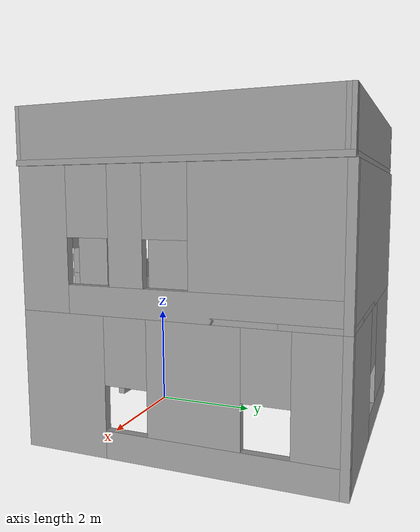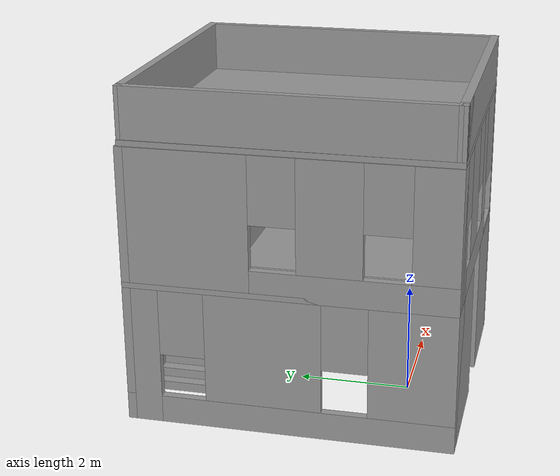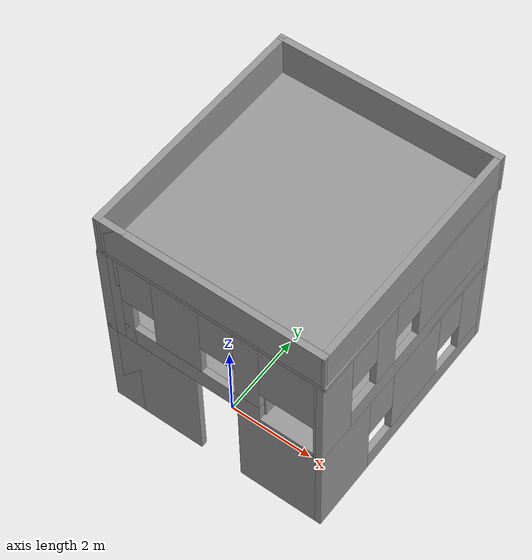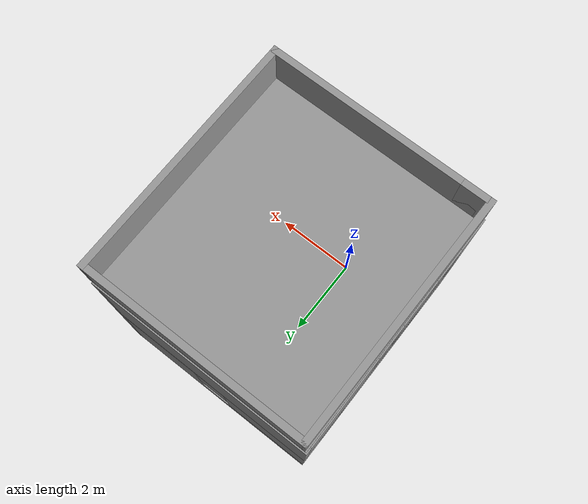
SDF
<?xml version='1.0'?>
<sdf version='1.7'>
  <model name='nisha_house'>
    <pose>0.490201 1.7498 0 0 -0 0</pose>
    <link name='Floor_1'>
      <pose>-0.030201 0.000202 2.5 0 -0 0</pose>
      <visual name='Floor_1_Visual_0'>
        <pose>-2.0574 0 0.05 0 -0 0</pose>
        <geometry>
          <box>
            <size>1.1352 5.75 0.1</size>
          </box>
        </geometry>
        <material>
          <script>
            <uri>file://media/materials/scripts/gazebo.material</uri>
            <name>Gazebo/Grey</name>
          </script>
          <ambient>1 1 1 1</ambient>
        </material>
        <meta>
          <layer>1</layer>
        </meta>
      </visual>
      <collision name='Floor_1_Collision_0'>
        <geometry>
          <box>
            <size>1.1352 5.75 0.1</size>
          </box>
        </geometry>
        <pose>-2.0574 0 0.05 0 -0 0</pose>
      </collision>
      <visual name='Floor_1_Visual_1'>
        <pose>0.567598 -0.560448 0.05 0 -0 0</pose>
        <geometry>
          <box>
            <size>4.1148 4.6291 0.1</size>
          </box>
        </geometry>
        <material>
          <script>
            <uri>file://media/materials/scripts/gazebo.material</uri>
            <name>Gazebo/Grey</name>
          </script>
          <ambient>1 1 1 1</ambient>
        </material>
        <meta>
          <layer>1</layer>
        </meta>
      </visual>
      <collision name='Floor_1_Collision_1'>
        <geometry>
          <box>
            <size>4.1148 4.6291 0.1</size>
          </box>
        </geometry>
        <pose>0.567598 -0.560448 0.05 0 -0 0</pose>
      </collision>
      <visual name='Floor_1_Visual_2'>
        <pose>2.11988 2.31455 0.05 0 -0 0</pose>
        <geometry>
          <box>
            <size>1.01023 1.1209 0.1</size>
          </box>
        </geometry>
        <material>
          <script>
            <uri>file://media/materials/scripts/gazebo.material</uri>
            <name>Gazebo/Grey</name>
          </script>
          <ambient>1 1 1 1</ambient>
        </material>
        <meta>
          <layer>1</layer>
        </meta>
      </visual>
      <collision name='Floor_1_Collision_2'>
        <geometry>
          <box>
            <size>1.01023 1.1209 0.1</size>
          </box>
        </geometry>
        <pose>2.11988 2.31455 0.05 0 -0 0</pose>
      </collision>
      <visual name='Floor_1_Visual_3'>
        <pose>0.062483 2.81455 0.05 0 -0 0</pose>
        <geometry>
          <box>
            <size>3.10457 0.120896 0.1</size>
          </box>
        </geometry>
        <material>
          <script>
            <uri>file://media/materials/scripts/gazebo.material</uri>
            <name>Gazebo/Grey</name>
          </script>
          <ambient>1 1 1 1</ambient>
        </material>
        <meta>
          <layer>1</layer>
        </meta>
      </visual>
      <collision name='Floor_1_Collision_3'>
        <geometry>
          <box>
            <size>3.10457 0.120896 0.1</size>
          </box>
        </geometry>
        <pose>0.062483 2.81455 0.05 0 -0 0</pose>
      </collision>
    </link>
    <link name='Floor_2'>
      <collision name='Floor_2_Collision'>
        <geometry>
          <box>
            <size>5.28081 5.7204 0.1</size>
          </box>
        </geometry>
        <pose>0 0 0.05 0 -0 0</pose>
      </collision>
      <visual name='Floor_2_Visual'>
        <pose>0 0 0.05 0 -0 0</pose>
        <geometry>
          <box>
            <size>5.28081 5.7204 0.1</size>
          </box>
        </geometry>
        <material>
          <script>
            <uri>file://media/materials/scripts/gazebo.material</uri>
            <name>Gazebo/Grey</name>
          </script>
          <ambient>1 1 1 1</ambient>
        </material>
        <meta>
          <layer>2</layer>
        </meta>
      </visual>
      <pose>0.014799 -0.014798 5 0 -0 0</pose>
    </link>
    <link name='Stairs_0'>
      <visual name='Stairs_0_Visual_0'>
        <pose>-1.41652 2.25431 0.083333 0 -0 1.5708</pose>
        <geometry>
          <box>
            <size>1 0.206971 0.166667</size>
          </box>
        </geometry>
        <material>
          <script>
            <uri>file://media/materials/scripts/gazebo.material</uri>
            <name>Gazebo/Grey</name>
          </script>
          <ambient>1 1 1 1</ambient>
        </material>
        <meta>
          <layer>0</layer>
        </meta>
      </visual>
      <collision name='Stairs_0_Collision_0'>
        <geometry>
          <box>
            <size>1 0.206971 0.166667</size>
          </box>
        </geometry>
        <pose>-1.41652 2.25431 0.083333 0 -0 1.5708</pose>
      </collision>
      <visual name='Stairs_0_Visual_1'>
        <pose>-1.20955 2.25431 0.25 0 -0 1.5708</pose>
        <geometry>
          <box>
            <size>1 0.206971 0.166667</size>
          </box>
        </geometry>
        <material>
          <script>
            <uri>file://media/materials/scripts/gazebo.material</uri>
            <name>Gazebo/Grey</name>
          </script>
          <ambient>1 1 1 1</ambient>
        </material>
        <meta>
          <layer>0</layer>
        </meta>
      </visual>
      <collision name='Stairs_0_Collision_1'>
        <geometry>
          <box>
            <size>1 0.206971 0.166667</size>
          </box>
        </geometry>
        <pose>-1.20955 2.25431 0.25 0 -0 1.5708</pose>
      </collision>
      <visual name='Stairs_0_Visual_2'>
        <pose>-1.00258 2.25431 0.416667 0 -0 1.5708</pose>
        <geometry>
          <box>
            <size>1 0.206971 0.166667</size>
          </box>
        </geometry>
        <material>
          <script>
            <uri>file://media/materials/scripts/gazebo.material</uri>
            <name>Gazebo/Grey</name>
          </script>
          <ambient>1 1 1 1</ambient>
        </material>
        <meta>
          <layer>0</layer>
        </meta>
      </visual>
      <collision name='Stairs_0_Collision_2'>
        <geometry>
          <box>
            <size>1 0.206971 0.166667</size>
          </box>
        </geometry>
        <pose>-1.00258 2.25431 0.416667 0 -0 1.5708</pose>
      </collision>
      <visual name='Stairs_0_Visual_3'>
        <pose>-0.795605 2.25431 0.583333 0 -0 1.5708</pose>
        <geometry>
          <box>
            <size>1 0.206971 0.166667</size>
          </box>
        </geometry>
        <material>
          <script>
            <uri>file://media/materials/scripts/gazebo.material</uri>
            <name>Gazebo/Grey</name>
          </script>
          <ambient>1 1 1 1</ambient>
        </material>
        <meta>
          <layer>0</layer>
        </meta>
      </visual>
      <collision name='Stairs_0_Collision_3'>
        <geometry>
          <box>
            <size>1 0.206971 0.166667</size>
          </box>
        </geometry>
        <pose>-0.795605 2.25431 0.583333 0 -0 1.5708</pose>
      </collision>
      <visual name='Stairs_0_Visual_4'>
        <pose>-0.588633 2.25431 0.75 0 -0 1.5708</pose>
        <geometry>
          <box>
            <size>1 0.206971 0.166667</size>
          </box>
        </geometry>
        <material>
          <script>
            <uri>file://media/materials/scripts/gazebo.material</uri>
            <name>Gazebo/Grey</name>
          </script>
          <ambient>1 1 1 1</ambient>
        </material>
        <meta>
          <layer>0</layer>
        </meta>
      </visual>
      <collision name='Stairs_0_Collision_4'>
        <geometry>
          <box>
            <size>1 0.206971 0.166667</size>
          </box>
        </geometry>
        <pose>-0.588633 2.25431 0.75 0 -0 1.5708</pose>
      </collision>
      <visual name='Stairs_0_Visual_5'>
        <pose>-0.381662 2.25431 0.916667 0 -0 1.5708</pose>
        <geometry>
          <box>
            <size>1 0.206971 0.166667</size>
          </box>
        </geometry>
        <material>
          <script>
            <uri>file://media/materials/scripts/gazebo.material</uri>
            <name>Gazebo/Grey</name>
          </script>
          <ambient>1 1 1 1</ambient>
        </material>
        <meta>
          <layer>0</layer>
        </meta>
      </visual>
      <collision name='Stairs_0_Collision_5'>
        <geometry>
          <box>
            <size>1 0.206971 0.166667</size>
          </box>
        </geometry>
        <pose>-0.381662 2.25431 0.916667 0 -0 1.5708</pose>
      </collision>
      <visual name='Stairs_0_Visual_6'>
        <pose>-0.17469 2.25431 1.08333 0 -0 1.5708</pose>
        <geometry>
          <box>
            <size>1 0.206971 0.166667</size>
          </box>
        </geometry>
        <material>
          <script>
            <uri>file://media/materials/scripts/gazebo.material</uri>
            <name>Gazebo/Grey</name>
          </script>
          <ambient>1 1 1 1</ambient>
        </material>
        <meta>
          <layer>0</layer>
        </meta>
      </visual>
      <collision name='Stairs_0_Collision_6'>
        <geometry>
          <box>
            <size>1 0.206971 0.166667</size>
          </box>
        </geometry>
        <pose>-0.17469 2.25431 1.08333 0 -0 1.5708</pose>
      </collision>
      <visual name='Stairs_0_Visual_7'>
        <pose>0.032281 2.25431 1.25 0 -0 1.5708</pose>
        <geometry>
          <box>
            <size>1 0.206971 0.166667</size>
          </box>
        </geometry>
        <material>
          <script>
            <uri>file://media/materials/scripts/gazebo.material</uri>
            <name>Gazebo/Grey</name>
          </script>
          <ambient>1 1 1 1</ambient>
        </material>
        <meta>
          <layer>0</layer>
        </meta>
      </visual>
      <collision name='Stairs_0_Collision_7'>
        <geometry>
          <box>
            <size>1 0.206971 0.166667</size>
          </box>
        </geometry>
        <pose>0.032281 2.25431 1.25 0 -0 1.5708</pose>
      </collision>
      <visual name='Stairs_0_Visual_8'>
        <pose>0.239253 2.25431 1.41667 0 -0 1.5708</pose>
        <geometry>
          <box>
            <size>1 0.206971 0.166667</size>
          </box>
        </geometry>
        <material>
          <script>
            <uri>file://media/materials/scripts/gazebo.material</uri>
            <name>Gazebo/Grey</name>
          </script>
          <ambient>1 1 1 1</ambient>
        </material>
        <meta>
          <layer>0</layer>
        </meta>
      </visual>
      <collision name='Stairs_0_Collision_8'>
        <geometry>
          <box>
            <size>1 0.206971 0.166667</size>
          </box>
        </geometry>
        <pose>0.239253 2.25431 1.41667 0 -0 1.5708</pose>
      </collision>
      <visual name='Stairs_0_Visual_9'>
        <pose>0.446224 2.25431 1.58333 0 -0 1.5708</pose>
        <geometry>
          <box>
            <size>1 0.206971 0.166667</size>
          </box>
        </geometry>
        <material>
          <script>
            <uri>file://media/materials/scripts/gazebo.material</uri>
            <name>Gazebo/Grey</name>
          </script>
          <ambient>1 1 1 1</ambient>
        </material>
        <meta>
          <layer>0</layer>
        </meta>
      </visual>
      <collision name='Stairs_0_Collision_9'>
        <geometry>
          <box>
            <size>1 0.206971 0.166667</size>
          </box>
        </geometry>
        <pose>0.446224 2.25431 1.58333 0 -0 1.5708</pose>
      </collision>
      <visual name='Stairs_0_Visual_10'>
        <pose>0.653196 2.25431 1.75 0 -0 1.5708</pose>
        <geometry>
          <box>
            <size>1 0.206971 0.166667</size>
          </box>
        </geometry>
        <material>
          <script>
            <uri>file://media/materials/scripts/gazebo.material</uri>
            <name>Gazebo/Grey</name>
          </script>
          <ambient>1 1 1 1</ambient>
        </material>
        <meta>
          <layer>0</layer>
        </meta>
      </visual>
      <collision name='Stairs_0_Collision_10'>
        <geometry>
          <box>
            <size>1 0.206971 0.166667</size>
          </box>
        </geometry>
        <pose>0.653196 2.25431 1.75 0 -0 1.5708</pose>
      </collision>
      <visual name='Stairs_0_Visual_11'>
        <pose>0.860167 2.25431 1.91667 0 -0 1.5708</pose>
        <geometry>
          <box>
            <size>1 0.206971 0.166667</size>
          </box>
        </geometry>
        <material>
          <script>
            <uri>file://media/materials/scripts/gazebo.material</uri>
            <name>Gazebo/Grey</name>
          </script>
          <ambient>1 1 1 1</ambient>
        </material>
        <meta>
          <layer>0</layer>
        </meta>
      </visual>
      <collision name='Stairs_0_Collision_11'>
        <geometry>
          <box>
            <size>1 0.206971 0.166667</size>
          </box>
        </geometry>
        <pose>0.860167 2.25431 1.91667 0 -0 1.5708</pose>
      </collision>
      <visual name='Stairs_0_Visual_12'>
        <pose>1.06714 2.25431 2.08333 0 -0 1.5708</pose>
        <geometry>
          <box>
            <size>1 0.206971 0.166667</size>
          </box>
        </geometry>
        <material>
          <script>
            <uri>file://media/materials/scripts/gazebo.material</uri>
            <name>Gazebo/Grey</name>
          </script>
          <ambient>1 1 1 1</ambient>
        </material>
        <meta>
          <layer>0</layer>
        </meta>
      </visual>
      <collision name='Stairs_0_Collision_12'>
        <geometry>
          <box>
            <size>1 0.206971 0.166667</size>
          </box>
        </geometry>
        <pose>1.06714 2.25431 2.08333 0 -0 1.5708</pose>
      </collision>
      <visual name='Stairs_0_Visual_13'>
        <pose>1.27411 2.25431 2.25 0 -0 1.5708</pose>
        <geometry>
          <box>
            <size>1 0.206971 0.166667</size>
          </box>
        </geometry>
        <material>
          <script>
            <uri>file://media/materials/scripts/gazebo.material</uri>
            <name>Gazebo/Grey</name>
          </script>
          <ambient>1 1 1 1</ambient>
        </material>
        <meta>
          <layer>0</layer>
        </meta>
      </visual>
      <collision name='Stairs_0_Collision_13'>
        <geometry>
          <box>
            <size>1 0.206971 0.166667</size>
          </box>
        </geometry>
        <pose>1.27411 2.25431 2.25 0 -0 1.5708</pose>
      </collision>
      <visual name='Stairs_0_Visual_14'>
        <pose>1.48108 2.25431 2.41667 0 -0 1.5708</pose>
        <geometry>
          <box>
            <size>1 0.206971 0.166667</size>
          </box>
        </geometry>
        <material>
          <script>
            <uri>file://media/materials/scripts/gazebo.material</uri>
            <name>Gazebo/Grey</name>
          </script>
          <ambient>1 1 1 1</ambient>
        </material>
        <meta>
          <layer>0</layer>
        </meta>
      </visual>
      <collision name='Stairs_0_Collision_14'>
        <geometry>
          <box>
            <size>1 0.206971 0.166667</size>
          </box>
        </geometry>
        <pose>1.48108 2.25431 2.41667 0 -0 1.5708</pose>
      </collision>
    </link>
    <link name='Wall_0'>
      <pose>0.094799 -2.7998 0 0 -0 0</pose>
      <visual name='Wall_0_Visual_0'>
        <pose>-1.50084 0 1.25 0 -0 0</pose>
        <geometry>
          <box>
            <size>1.99832 0.15 2.5</size>
          </box>
        </geometry>
        <material>
          <script>
            <uri>file://media/materials/scripts/gazebo.material</uri>
            <name>Gazebo/Grey</name>
          </script>
          <ambient>1 1 1 1</ambient>
        </material>
        <meta>
          <layer>0</layer>
        </meta>
      </visual>
      <collision name='Wall_0_Collision_0'>
        <geometry>
          <box>
            <size>1.99832 0.15 2.5</size>
          </box>
        </geometry>
        <pose>-1.50084 0 1.25 0 -0 0</pose>
      </collision>
      <visual name='Wall_0_Visual_1'>
        <pose>1.49916 0 1.25 0 -0 0</pose>
        <geometry>
          <box>
            <size>2.00168 0.15 2.5</size>
          </box>
        </geometry>
        <material>
          <script>
            <uri>file://media/materials/scripts/gazebo.material</uri>
            <name>Gazebo/Grey</name>
          </script>
          <ambient>1 1 1 1</ambient>
        </material>
        <meta>
          <layer>0</layer>
        </meta>
      </visual>
      <collision name='Wall_0_Collision_1'>
        <geometry>
          <box>
            <size>2.00168 0.15 2.5</size>
          </box>
        </geometry>
        <pose>1.49916 0 1.25 0 -0 0</pose>
      </collision>
    </link>
    <link name='Wall_1'>
      <pose>2.5198 0.000202 0 0 -0 1.5708</pose>
      <visual name='Wall_1_Visual_0'>
        <pose>-2.06935 0 1.25 0 -0 0</pose>
        <geometry>
          <box>
            <size>1.61131 0.15 2.5</size>
          </box>
        </geometry>
        <material>
          <script>
            <uri>file://media/materials/scripts/gazebo.material</uri>
            <name>Gazebo/Grey</name>
          </script>
          <ambient>1 1 1 1</ambient>
        </material>
        <meta>
          <layer>0</layer>
        </meta>
      </visual>
      <collision name='Wall_1_Collision_0'>
        <geometry>
          <box>
            <size>1.61131 0.15 2.5</size>
          </box>
        </geometry>
        <pose>-2.06935 0 1.25 0 -0 0</pose>
      </collision>
      <visual name='Wall_1_Visual_1'>
        <pose>0.805655 0 0.25 0 -0 0</pose>
        <geometry>
          <box>
            <size>4.13869 0.15 0.5</size>
          </box>
        </geometry>
        <material>
          <script>
            <uri>file://media/materials/scripts/gazebo.material</uri>
            <name>Gazebo/Grey</name>
          </script>
          <ambient>1 1 1 1</ambient>
        </material>
        <meta>
          <layer>0</layer>
        </meta>
      </visual>
      <collision name='Wall_1_Collision_1'>
        <geometry>
          <box>
            <size>4.13869 0.15 0.5</size>
          </box>
        </geometry>
        <pose>0.805655 0 0.25 0 -0 0</pose>
      </collision>
      <visual name='Wall_1_Visual_2'>
        <pose>0.35301 0 1.5 0 -0 0</pose>
        <geometry>
          <box>
            <size>1.6334 0.15 2</size>
          </box>
        </geometry>
        <material>
          <script>
            <uri>file://media/materials/scripts/gazebo.material</uri>
            <name>Gazebo/Grey</name>
          </script>
          <ambient>1 1 1 1</ambient>
        </material>
        <meta>
          <layer>0</layer>
        </meta>
      </visual>
      <collision name='Wall_1_Collision_2'>
        <geometry>
          <box>
            <size>1.6334 0.15 2</size>
          </box>
        </geometry>
        <pose>0.35301 0 1.5 0 -0 0</pose>
      </collision>
      <visual name='Wall_1_Visual_3'>
        <pose>2.42236 0 1.5 0 -0 0</pose>
        <geometry>
          <box>
            <size>0.90529 0.15 2</size>
          </box>
        </geometry>
        <material>
          <script>
            <uri>file://media/materials/scripts/gazebo.material</uri>
            <name>Gazebo/Grey</name>
          </script>
          <ambient>1 1 1 1</ambient>
        </material>
        <meta>
          <layer>0</layer>
        </meta>
      </visual>
      <collision name='Wall_1_Collision_3'>
        <geometry>
          <box>
            <size>0.90529 0.15 2</size>
          </box>
        </geometry>
        <pose>2.42236 0 1.5 0 -0 0</pose>
      </collision>
      <visual name='Wall_1_Visual_4'>
        <pose>-0.86369 0 1.9 0 -0 0</pose>
        <geometry>
          <box>
            <size>0.8 0.15 1.2</size>
          </box>
        </geometry>
        <material>
          <script>
            <uri>file://media/materials/scripts/gazebo.material</uri>
            <name>Gazebo/Grey</name>
          </script>
          <ambient>1 1 1 1</ambient>
        </material>
        <meta>
          <layer>0</layer>
        </meta>
      </visual>
      <collision name='Wall_1_Collision_4'>
        <geometry>
          <box>
            <size>0.8 0.15 1.2</size>
          </box>
        </geometry>
        <pose>-0.86369 0 1.9 0 -0 0</pose>
      </collision>
      <visual name='Wall_1_Visual_5'>
        <pose>1.56971 0 1.9 0 -0 0</pose>
        <geometry>
          <box>
            <size>0.8 0.15 1.2</size>
          </box>
        </geometry>
        <material>
          <script>
            <uri>file://media/materials/scripts/gazebo.material</uri>
            <name>Gazebo/Grey</name>
          </script>
          <ambient>1 1 1 1</ambient>
        </material>
        <meta>
          <layer>0</layer>
        </meta>
      </visual>
      <collision name='Wall_1_Collision_5'>
        <geometry>
          <box>
            <size>0.8 0.15 1.2</size>
          </box>
        </geometry>
        <pose>1.56971 0 1.9 0 -0 0</pose>
      </collision>
    </link>
    <link name='Wall_15'>
      <pose>0.094799 -2.7998 2.5 0 -0 0</pose>
      <visual name='Wall_15_Visual_0'>
        <pose>-2.37858 0 1.25 0 -0 0</pose>
        <geometry>
          <box>
            <size>0.24285 0.15 2.5</size>
          </box>
        </geometry>
        <material>
          <script>
            <uri>file://media/materials/scripts/gazebo.material</uri>
            <name>Gazebo/Grey</name>
          </script>
          <ambient>1 1 1 1</ambient>
        </material>
        <meta>
          <layer>1</layer>
        </meta>
      </visual>
      <collision name='Wall_15_Collision_0'>
        <geometry>
          <box>
            <size>0.24285 0.15 2.5</size>
          </box>
        </geometry>
        <pose>-2.37858 0 1.25 0 -0 0</pose>
      </collision>
      <visual name='Wall_15_Visual_1'>
        <pose>2.39964 0 1.25 0 -0 0</pose>
        <geometry>
          <box>
            <size>0.20072 0.15 2.5</size>
          </box>
        </geometry>
        <material>
          <script>
            <uri>file://media/materials/scripts/gazebo.material</uri>
            <name>Gazebo/Grey</name>
          </script>
          <ambient>1 1 1 1</ambient>
        </material>
        <meta>
          <layer>1</layer>
        </meta>
      </visual>
      <collision name='Wall_15_Collision_1'>
        <geometry>
          <box>
            <size>0.20072 0.15 2.5</size>
          </box>
        </geometry>
        <pose>2.39964 0 1.25 0 -0 0</pose>
      </collision>
      <visual name='Wall_15_Visual_2'>
        <pose>-0.606935 0 0.25 0 -0 0</pose>
        <geometry>
          <box>
            <size>3.30043 0.15 0.5</size>
          </box>
        </geometry>
        <material>
          <script>
            <uri>file://media/materials/scripts/gazebo.material</uri>
            <name>Gazebo/Grey</name>
          </script>
          <ambient>1 1 1 1</ambient>
        </material>
        <meta>
          <layer>1</layer>
        </meta>
      </visual>
      <collision name='Wall_15_Collision_2'>
        <geometry>
          <box>
            <size>3.30043 0.15 0.5</size>
          </box>
        </geometry>
        <pose>-0.606935 0 0.25 0 -0 0</pose>
      </collision>
      <visual name='Wall_15_Visual_3'>
        <pose>-0.898999 0 1.5 0 -0 0</pose>
        <geometry>
          <box>
            <size>1.1163 0.15 2</size>
          </box>
        </geometry>
        <material>
          <script>
            <uri>file://media/materials/scripts/gazebo.material</uri>
            <name>Gazebo/Grey</name>
          </script>
          <ambient>1 1 1 1</ambient>
        </material>
        <meta>
          <layer>1</layer>
        </meta>
      </visual>
      <collision name='Wall_15_Collision_3'>
        <geometry>
          <box>
            <size>1.1163 0.15 2</size>
          </box>
        </geometry>
        <pose>-0.898999 0 1.5 0 -0 0</pose>
      </collision>
      <visual name='Wall_15_Visual_4'>
        <pose>0.751216 0 1.5 0 -0 0</pose>
        <geometry>
          <box>
            <size>0.584127 0.15 2</size>
          </box>
        </geometry>
        <material>
          <script>
            <uri>file://media/materials/scripts/gazebo.material</uri>
            <name>Gazebo/Grey</name>
          </script>
          <ambient>1 1 1 1</ambient>
        </material>
        <meta>
          <layer>1</layer>
        </meta>
      </visual>
      <collision name='Wall_15_Collision_4'>
        <geometry>
          <box>
            <size>0.584127 0.15 2</size>
          </box>
        </geometry>
        <pose>0.751216 0 1.5 0 -0 0</pose>
      </collision>
      <visual name='Wall_15_Visual_5'>
        <pose>1.67128 0 1.75 0 -0 0</pose>
        <geometry>
          <box>
            <size>1.256 0.15 1.5</size>
          </box>
        </geometry>
        <material>
          <script>
            <uri>file://media/materials/scripts/gazebo.material</uri>
            <name>Gazebo/Grey</name>
          </script>
          <ambient>1 1 1 1</ambient>
        </material>
        <meta>
          <layer>1</layer>
        </meta>
      </visual>
      <collision name='Wall_15_Collision_5'>
        <geometry>
          <box>
            <size>1.256 0.15 1.5</size>
          </box>
        </geometry>
        <pose>1.67128 0 1.75 0 -0 0</pose>
      </collision>
      <visual name='Wall_15_Visual_6'>
        <pose>-1.85715 0 1.9 0 -0 0</pose>
        <geometry>
          <box>
            <size>0.8 0.15 1.2</size>
          </box>
        </geometry>
        <material>
          <script>
            <uri>file://media/materials/scripts/gazebo.material</uri>
            <name>Gazebo/Grey</name>
          </script>
          <ambient>1 1 1 1</ambient>
        </material>
        <meta>
          <layer>1</layer>
        </meta>
      </visual>
      <collision name='Wall_15_Collision_6'>
        <geometry>
          <box>
            <size>0.8 0.15 1.2</size>
          </box>
        </geometry>
        <pose>-1.85715 0 1.9 0 -0 0</pose>
      </collision>
      <visual name='Wall_15_Visual_7'>
        <pose>0.059153 0 1.9 0 -0 0</pose>
        <geometry>
          <box>
            <size>0.8 0.15 1.2</size>
          </box>
        </geometry>
        <material>
          <script>
            <uri>file://media/materials/scripts/gazebo.material</uri>
            <name>Gazebo/Grey</name>
          </script>
          <ambient>1 1 1 1</ambient>
        </material>
        <meta>
          <layer>1</layer>
        </meta>
      </visual>
      <collision name='Wall_15_Collision_7'>
        <geometry>
          <box>
            <size>0.8 0.15 1.2</size>
          </box>
        </geometry>
        <pose>0.059153 0 1.9 0 -0 0</pose>
      </collision>
    </link>
    <link name='Wall_16'>
      <pose>2.5198 0.000202 2.5 0 -0 1.5708</pose>
      <visual name='Wall_16_Visual_0'>
        <pose>-2.40394 0 1.25 0 -0 0</pose>
        <geometry>
          <box>
            <size>0.942125 0.15 2.5</size>
          </box>
        </geometry>
        <material>
          <script>
            <uri>file://media/materials/scripts/gazebo.material</uri>
            <name>Gazebo/Grey</name>
          </script>
          <ambient>1 1 1 1</ambient>
        </material>
        <meta>
          <layer>1</layer>
        </meta>
      </visual>
      <collision name='Wall_16_Collision_0'>
        <geometry>
          <box>
            <size>0.942125 0.15 2.5</size>
          </box>
        </geometry>
        <pose>-2.40394 0 1.25 0 -0 0</pose>
      </collision>
      <visual name='Wall_16_Visual_1'>
        <pose>0.471062 0 0.25 0 -0 0</pose>
        <geometry>
          <box>
            <size>4.80788 0.15 0.5</size>
          </box>
        </geometry>
        <material>
          <script>
            <uri>file://media/materials/scripts/gazebo.material</uri>
            <name>Gazebo/Grey</name>
          </script>
          <ambient>1 1 1 1</ambient>
        </material>
        <meta>
          <layer>1</layer>
        </meta>
      </visual>
      <collision name='Wall_16_Collision_1'>
        <geometry>
          <box>
            <size>4.80788 0.15 0.5</size>
          </box>
        </geometry>
        <pose>0.471062 0 0.25 0 -0 0</pose>
      </collision>
      <visual name='Wall_16_Visual_2'>
        <pose>-0.818064 0 1.5 0 -0 0</pose>
        <geometry>
          <box>
            <size>0.629622 0.15 2</size>
          </box>
        </geometry>
        <material>
          <script>
            <uri>file://media/materials/scripts/gazebo.material</uri>
            <name>Gazebo/Grey</name>
          </script>
          <ambient>1 1 1 1</ambient>
        </material>
        <meta>
          <layer>1</layer>
        </meta>
      </visual>
      <collision name='Wall_16_Collision_2'>
        <geometry>
          <box>
            <size>0.629622 0.15 2</size>
          </box>
        </geometry>
        <pose>-0.818064 0 1.5 0 -0 0</pose>
      </collision>
      <visual name='Wall_16_Visual_3'>
        <pose>1.58587 0 1.5 0 -0 0</pose>
        <geometry>
          <box>
            <size>2.57825 0.15 2</size>
          </box>
        </geometry>
        <material>
          <script>
            <uri>file://media/materials/scripts/gazebo.material</uri>
            <name>Gazebo/Grey</name>
          </script>
          <ambient>1 1 1 1</ambient>
        </material>
        <meta>
          <layer>1</layer>
        </meta>
      </visual>
      <collision name='Wall_16_Collision_3'>
        <geometry>
          <box>
            <size>2.57825 0.15 2</size>
          </box>
        </geometry>
        <pose>1.58587 0 1.5 0 -0 0</pose>
      </collision>
      <visual name='Wall_16_Visual_4'>
        <pose>-1.53287 0 1.9 0 -0 0</pose>
        <geometry>
          <box>
            <size>0.8 0.15 1.2</size>
          </box>
        </geometry>
        <material>
          <script>
            <uri>file://media/materials/scripts/gazebo.material</uri>
            <name>Gazebo/Grey</name>
          </script>
          <ambient>1 1 1 1</ambient>
        </material>
        <meta>
          <layer>1</layer>
        </meta>
      </visual>
      <collision name='Wall_16_Collision_4'>
        <geometry>
          <box>
            <size>0.8 0.15 1.2</size>
          </box>
        </geometry>
        <pose>-1.53287 0 1.9 0 -0 0</pose>
      </collision>
      <visual name='Wall_16_Visual_5'>
        <pose>-0.103253 0 1.9 0 -0 0</pose>
        <geometry>
          <box>
            <size>0.8 0.15 1.2</size>
          </box>
        </geometry>
        <material>
          <script>
            <uri>file://media/materials/scripts/gazebo.material</uri>
            <name>Gazebo/Grey</name>
          </script>
          <ambient>1 1 1 1</ambient>
        </material>
        <meta>
          <layer>1</layer>
        </meta>
      </visual>
      <collision name='Wall_16_Collision_5'>
        <geometry>
          <box>
            <size>0.8 0.15 1.2</size>
          </box>
        </geometry>
        <pose>-0.103253 0 1.9 0 -0 0</pose>
      </collision>
    </link>
    <link name='Wall_17'>
      <collision name='Wall_17_Collision'>
        <geometry>
          <box>
            <size>5.25 0.15 2.5</size>
          </box>
        </geometry>
        <pose>0 0 1.25 0 -0 0</pose>
      </collision>
      <visual name='Wall_17_Visual'>
        <pose>0 0 1.25 0 -0 0</pose>
        <geometry>
          <box>
            <size>5.25 0.15 2.5</size>
          </box>
        </geometry>
        <material>
          <script>
            <uri>file://media/materials/scripts/gazebo.material</uri>
            <name>Gazebo/Grey</name>
          </script>
          <ambient>1 1 1 1</ambient>
        </material>
        <meta>
          <layer>1</layer>
        </meta>
      </visual>
      <pose>-0.030201 2.8002 2.5 0 -0 3.14159</pose>
    </link>
    <link name='Wall_18'>
      <pose>-2.5802 0.000202 2.5 0 -0 -1.5708</pose>
      <visual name='Wall_18_Visual_0'>
        <pose>-1.75317 0 1.25 0 -0 0</pose>
        <geometry>
          <box>
            <size>2.24366 0.15 2.5</size>
          </box>
        </geometry>
        <material>
          <script>
            <uri>file://media/materials/scripts/gazebo.material</uri>
            <name>Gazebo/Grey</name>
          </script>
          <ambient>1 1 1 1</ambient>
        </material>
        <meta>
          <layer>1</layer>
        </meta>
      </visual>
      <collision name='Wall_18_Collision_0'>
        <geometry>
          <box>
            <size>2.24366 0.15 2.5</size>
          </box>
        </geometry>
        <pose>-1.75317 0 1.25 0 -0 0</pose>
      </collision>
      <visual name='Wall_18_Visual_1'>
        <pose>1.12183 0 0.25 0 -0 0</pose>
        <geometry>
          <box>
            <size>3.50634 0.15 0.5</size>
          </box>
        </geometry>
        <material>
          <script>
            <uri>file://media/materials/scripts/gazebo.material</uri>
            <name>Gazebo/Grey</name>
          </script>
          <ambient>1 1 1 1</ambient>
        </material>
        <meta>
          <layer>1</layer>
        </meta>
      </visual>
      <collision name='Wall_18_Collision_1'>
        <geometry>
          <box>
            <size>3.50634 0.15 0.5</size>
          </box>
        </geometry>
        <pose>1.12183 0 0.25 0 -0 0</pose>
      </collision>
      <visual name='Wall_18_Visual_2'>
        <pose>0.726811 0 1.5 0 -0 0</pose>
        <geometry>
          <box>
            <size>1.1163 0.15 2</size>
          </box>
        </geometry>
        <material>
          <script>
            <uri>file://media/materials/scripts/gazebo.material</uri>
            <name>Gazebo/Grey</name>
          </script>
          <ambient>1 1 1 1</ambient>
        </material>
        <meta>
          <layer>1</layer>
        </meta>
      </visual>
      <collision name='Wall_18_Collision_2'>
        <geometry>
          <box>
            <size>1.1163 0.15 2</size>
          </box>
        </geometry>
        <pose>0.726811 0 1.5 0 -0 0</pose>
      </collision>
      <visual name='Wall_18_Visual_3'>
        <pose>2.47998 0 1.5 0 -0 0</pose>
        <geometry>
          <box>
            <size>0.790037 0.15 2</size>
          </box>
        </geometry>
        <material>
          <script>
            <uri>file://media/materials/scripts/gazebo.material</uri>
            <name>Gazebo/Grey</name>
          </script>
          <ambient>1 1 1 1</ambient>
        </material>
        <meta>
          <layer>1</layer>
        </meta>
      </visual>
      <collision name='Wall_18_Collision_3'>
        <geometry>
          <box>
            <size>0.790037 0.15 2</size>
          </box>
        </geometry>
        <pose>2.47998 0 1.5 0 -0 0</pose>
      </collision>
      <visual name='Wall_18_Visual_4'>
        <pose>-0.23134 0 1.9 0 -0 0</pose>
        <geometry>
          <box>
            <size>0.8 0.15 1.2</size>
          </box>
        </geometry>
        <material>
          <script>
            <uri>file://media/materials/scripts/gazebo.material</uri>
            <name>Gazebo/Grey</name>
          </script>
          <ambient>1 1 1 1</ambient>
        </material>
        <meta>
          <layer>1</layer>
        </meta>
      </visual>
      <collision name='Wall_18_Collision_4'>
        <geometry>
          <box>
            <size>0.8 0.15 1.2</size>
          </box>
        </geometry>
        <pose>-0.23134 0 1.9 0 -0 0</pose>
      </collision>
      <visual name='Wall_18_Visual_5'>
        <pose>1.68496 0 1.9 0 -0 0</pose>
        <geometry>
          <box>
            <size>0.8 0.15 1.2</size>
          </box>
        </geometry>
        <material>
          <script>
            <uri>file://media/materials/scripts/gazebo.material</uri>
            <name>Gazebo/Grey</name>
          </script>
          <ambient>1 1 1 1</ambient>
        </material>
        <meta>
          <layer>1</layer>
        </meta>
      </visual>
      <collision name='Wall_18_Collision_5'>
        <geometry>
          <box>
            <size>0.8 0.15 1.2</size>
          </box>
        </geometry>
        <pose>1.68496 0 1.9 0 -0 0</pose>
      </collision>
    </link>
    <link name='Wall_19'>
      <collision name='Wall_19_Collision'>
        <geometry>
          <box>
            <size>0.75 0.15 2.5</size>
          </box>
        </geometry>
        <pose>0 0 1.25 0 -0 0</pose>
      </collision>
      <visual name='Wall_19_Visual'>
        <pose>0 0 1.25 0 -0 0</pose>
        <geometry>
          <box>
            <size>0.75 0.15 2.5</size>
          </box>
        </geometry>
        <material>
          <script>
            <uri>file://media/materials/scripts/gazebo.material</uri>
            <name>Gazebo/Grey</name>
          </script>
          <ambient>1 1 1 1</ambient>
        </material>
        <meta>
          <layer>1</layer>
        </meta>
      </visual>
      <pose>-2.2802 -2.7998 2.5 0 -0 0</pose>
    </link>
    <link name='Wall_2'>
      <pose>-0.030201 2.8002 0 0 -0 3.14159</pose>
      <visual name='Wall_2_Visual_0'>
        <pose>-1.51332 0 1.25 0 -0 0</pose>
        <geometry>
          <box>
            <size>2.22335 0.15 2.5</size>
          </box>
        </geometry>
        <material>
          <script>
            <uri>file://media/materials/scripts/gazebo.material</uri>
            <name>Gazebo/Grey</name>
          </script>
          <ambient>1 1 1 1</ambient>
        </material>
        <meta>
          <layer>0</layer>
        </meta>
      </visual>
      <collision name='Wall_2_Collision_0'>
        <geometry>
          <box>
            <size>2.22335 0.15 2.5</size>
          </box>
        </geometry>
        <pose>-1.51332 0 1.25 0 -0 0</pose>
      </collision>
      <visual name='Wall_2_Visual_1'>
        <pose>1.11168 0 0.25 0 -0 0</pose>
        <geometry>
          <box>
            <size>3.02665 0.15 0.5</size>
          </box>
        </geometry>
        <material>
          <script>
            <uri>file://media/materials/scripts/gazebo.material</uri>
            <name>Gazebo/Grey</name>
          </script>
          <ambient>1 1 1 1</ambient>
        </material>
        <meta>
          <layer>0</layer>
        </meta>
      </visual>
      <collision name='Wall_2_Collision_1'>
        <geometry>
          <box>
            <size>3.02665 0.15 0.5</size>
          </box>
        </geometry>
        <pose>1.11168 0 0.25 0 -0 0</pose>
      </collision>
      <visual name='Wall_2_Visual_2'>
        <pose>1.51168 0 1.5 0 -0 0</pose>
        <geometry>
          <box>
            <size>2.22665 0.15 2</size>
          </box>
        </geometry>
        <material>
          <script>
            <uri>file://media/materials/scripts/gazebo.material</uri>
            <name>Gazebo/Grey</name>
          </script>
          <ambient>1 1 1 1</ambient>
        </material>
        <meta>
          <layer>0</layer>
        </meta>
      </visual>
      <collision name='Wall_2_Collision_2'>
        <geometry>
          <box>
            <size>2.22665 0.15 2</size>
          </box>
        </geometry>
        <pose>1.51168 0 1.5 0 -0 0</pose>
      </collision>
      <visual name='Wall_2_Visual_3'>
        <pose>-0.001648 0 1.9 0 -0 0</pose>
        <geometry>
          <box>
            <size>0.8 0.15 1.2</size>
          </box>
        </geometry>
        <material>
          <script>
            <uri>file://media/materials/scripts/gazebo.material</uri>
            <name>Gazebo/Grey</name>
          </script>
          <ambient>1 1 1 1</ambient>
        </material>
        <meta>
          <layer>0</layer>
        </meta>
      </visual>
      <collision name='Wall_2_Collision_3'>
        <geometry>
          <box>
            <size>0.8 0.15 1.2</size>
          </box>
        </geometry>
        <pose>-0.001648 0 1.9 0 -0 0</pose>
      </collision>
    </link>
    <link name='Wall_20'>
      <pose>-0.097789 1.23532 2.5 0 -0 0</pose>
      <visual name='Wall_20_Visual_0'>
        <pose>-0.436605 0 1.25 0 -0 0</pose>
        <geometry>
          <box>
            <size>4.12679 0.15 2.5</size>
          </box>
        </geometry>
        <material>
          <script>
            <uri>file://media/materials/scripts/gazebo.material</uri>
            <name>Gazebo/Grey</name>
          </script>
          <ambient>1 1 1 1</ambient>
        </material>
        <meta>
          <layer>1</layer>
        </meta>
      </visual>
      <collision name='Wall_20_Collision_0'>
        <geometry>
          <box>
            <size>4.12679 0.15 2.5</size>
          </box>
        </geometry>
        <pose>-0.436605 0 1.25 0 -0 0</pose>
      </collision>
      <visual name='Wall_20_Visual_1'>
        <pose>2.06339 0 2.25 0 -0 0</pose>
        <geometry>
          <box>
            <size>0.87321 0.15 0.5</size>
          </box>
        </geometry>
        <material>
          <script>
            <uri>file://media/materials/scripts/gazebo.material</uri>
            <name>Gazebo/Grey</name>
          </script>
          <ambient>1 1 1 1</ambient>
        </material>
        <meta>
          <layer>1</layer>
        </meta>
      </visual>
      <collision name='Wall_20_Collision_1'>
        <geometry>
          <box>
            <size>0.87321 0.15 0.5</size>
          </box>
        </geometry>
        <pose>2.06339 0 2.25 0 -0 0</pose>
      </collision>
    </link>
    <link name='Wall_22'>
      <pose>1.09689 -0.720098 2.5 0 -0 -1.5708</pose>
      <visual name='Wall_22_Visual_0'>
        <pose>-1.71603 0 1.25 0 -0 0</pose>
        <geometry>
          <box>
            <size>0.567942 0.15 2.5</size>
          </box>
        </geometry>
        <material>
          <script>
            <uri>file://media/materials/scripts/gazebo.material</uri>
            <name>Gazebo/Grey</name>
          </script>
          <ambient>1 1 1 1</ambient>
        </material>
        <meta>
          <layer>1</layer>
        </meta>
      </visual>
      <collision name='Wall_22_Collision_0'>
        <geometry>
          <box>
            <size>0.567942 0.15 2.5</size>
          </box>
        </geometry>
        <pose>-1.71603 0 1.25 0 -0 0</pose>
      </collision>
      <visual name='Wall_22_Visual_1'>
        <pose>-0.039115 0 1.25 0 -0 0</pose>
        <geometry>
          <box>
            <size>0.985885 0.15 2.5</size>
          </box>
        </geometry>
        <material>
          <script>
            <uri>file://media/materials/scripts/gazebo.material</uri>
            <name>Gazebo/Grey</name>
          </script>
          <ambient>1 1 1 1</ambient>
        </material>
        <meta>
          <layer>1</layer>
        </meta>
      </visual>
      <collision name='Wall_22_Collision_1'>
        <geometry>
          <box>
            <size>0.985885 0.15 2.5</size>
          </box>
        </geometry>
        <pose>-0.039115 0 1.25 0 -0 0</pose>
      </collision>
      <visual name='Wall_22_Visual_2'>
        <pose>1.67691 0 1.25 0 -0 0</pose>
        <geometry>
          <box>
            <size>0.646172 0.15 2.5</size>
          </box>
        </geometry>
        <material>
          <script>
            <uri>file://media/materials/scripts/gazebo.material</uri>
            <name>Gazebo/Grey</name>
          </script>
          <ambient>1 1 1 1</ambient>
        </material>
        <meta>
          <layer>1</layer>
        </meta>
      </visual>
      <collision name='Wall_22_Collision_2'>
        <geometry>
          <box>
            <size>0.646172 0.15 2.5</size>
          </box>
        </geometry>
        <pose>1.67691 0 1.25 0 -0 0</pose>
      </collision>
      <visual name='Wall_22_Visual_3'>
        <pose>-0.982058 0 2.25 0 -0 0</pose>
        <geometry>
          <box>
            <size>0.9 0.15 0.5</size>
          </box>
        </geometry>
        <material>
          <script>
            <uri>file://media/materials/scripts/gazebo.material</uri>
            <name>Gazebo/Grey</name>
          </script>
          <ambient>1 1 1 1</ambient>
        </material>
        <meta>
          <layer>1</layer>
        </meta>
      </visual>
      <collision name='Wall_22_Collision_3'>
        <geometry>
          <box>
            <size>0.9 0.15 0.5</size>
          </box>
        </geometry>
        <pose>-0.982058 0 2.25 0 -0 0</pose>
      </collision>
      <visual name='Wall_22_Visual_4'>
        <pose>0.903828 0 2.25 0 -0 0</pose>
        <geometry>
          <box>
            <size>0.9 0.15 0.5</size>
          </box>
        </geometry>
        <material>
          <script>
            <uri>file://media/materials/scripts/gazebo.material</uri>
            <name>Gazebo/Grey</name>
          </script>
          <ambient>1 1 1 1</ambient>
        </material>
        <meta>
          <layer>1</layer>
        </meta>
      </visual>
      <collision name='Wall_22_Collision_4'>
        <geometry>
          <box>
            <size>0.9 0.15 0.5</size>
          </box>
        </geometry>
        <pose>0.903828 0 2.25 0 -0 0</pose>
      </collision>
    </link>
    <link name='Wall_24'>
      <collision name='Wall_24_Collision'>
        <geometry>
          <box>
            <size>3.75 0.15 2.5</size>
          </box>
        </geometry>
        <pose>0 0 1.25 0 -0 0</pose>
      </collision>
      <visual name='Wall_24_Visual'>
        <pose>0 0 1.25 0 -0 0</pose>
        <geometry>
          <box>
            <size>3.75 0.15 2.5</size>
          </box>
        </geometry>
        <material>
          <script>
            <uri>file://media/materials/scripts/gazebo.material</uri>
            <name>Gazebo/Grey</name>
          </script>
          <ambient>1 1 1 1</ambient>
        </material>
        <meta>
          <layer>1</layer>
        </meta>
      </visual>
      <pose>-0.733524 -0.680983 2.5 0 -0 3.14159</pose>
    </link>
    <link name='Wall_26'>
      <collision name='Wall_26_Collision'>
        <geometry>
          <box>
            <size>5.03 0.15 1</size>
          </box>
        </geometry>
        <pose>0 0 0.5 0 -0 0</pose>
      </collision>
      <visual name='Wall_26_Visual'>
        <pose>0 0 0.5 0 -0 0</pose>
        <geometry>
          <box>
            <size>5.03 0.15 1</size>
          </box>
        </geometry>
        <material>
          <script>
            <uri>file://media/materials/scripts/gazebo.material</uri>
            <name>Gazebo/Grey</name>
          </script>
          <ambient>1 1 1 1</ambient>
        </material>
        <meta>
          <layer>2</layer>
        </meta>
      </visual>
      <pose>0.109799 -2.7998 5 0 -0 0</pose>
    </link>
    <link name='Wall_27'>
      <collision name='Wall_27_Collision'>
        <geometry>
          <box>
            <size>5.72008 0.15 1</size>
          </box>
        </geometry>
        <pose>0 0 0.5 0 -0 0</pose>
      </collision>
      <visual name='Wall_27_Visual'>
        <pose>0 0 0.5 0 -0 0</pose>
        <geometry>
          <box>
            <size>5.72008 0.15 1</size>
          </box>
        </geometry>
        <material>
          <script>
            <uri>file://media/materials/scripts/gazebo.material</uri>
            <name>Gazebo/Grey</name>
          </script>
          <ambient>1 1 1 1</ambient>
        </material>
        <meta>
          <layer>2</layer>
        </meta>
      </visual>
      <pose>2.5648 -0.014798 5 0 -0 1.56541</pose>
    </link>
    <link name='Wall_28'>
      <collision name='Wall_28_Collision'>
        <geometry>
          <box>
            <size>5.25 0.15 1</size>
          </box>
        </geometry>
        <pose>0 0 0.5 0 -0 0</pose>
      </collision>
      <visual name='Wall_28_Visual'>
        <pose>0 0 0.5 0 -0 0</pose>
        <geometry>
          <box>
            <size>5.25 0.15 1</size>
          </box>
        </geometry>
        <material>
          <script>
            <uri>file://media/materials/scripts/gazebo.material</uri>
            <name>Gazebo/Grey</name>
          </script>
          <ambient>1 1 1 1</ambient>
        </material>
        <meta>
          <layer>2</layer>
        </meta>
      </visual>
      <pose>0.029799 2.7702 5 0 -0 3.14159</pose>
    </link>
    <link name='Wall_29'>
      <collision name='Wall_29_Collision'>
        <geometry>
          <box>
            <size>5.72008 0.15 1</size>
          </box>
        </geometry>
        <pose>0 0 0.5 0 -0 0</pose>
      </collision>
      <visual name='Wall_29_Visual'>
        <pose>0 0 0.5 0 -0 0</pose>
        <geometry>
          <box>
            <size>5.72008 0.15 1</size>
          </box>
        </geometry>
        <material>
          <script>
            <uri>file://media/materials/scripts/gazebo.material</uri>
            <name>Gazebo/Grey</name>
          </script>
          <ambient>1 1 1 1</ambient>
        </material>
        <meta>
          <layer>2</layer>
        </meta>
      </visual>
      <pose>-2.5352 -0.014798 5 0 -0 -1.57618</pose>
    </link>
    <link name='Wall_3'>
      <pose>-2.5802 0.000202 0 0 -0 -1.5708</pose>
      <visual name='Wall_3_Visual_0'>
        <pose>-2.55923 0 1.25 0 -0 0</pose>
        <geometry>
          <box>
            <size>0.631533 0.15 2.5</size>
          </box>
        </geometry>
        <material>
          <script>
            <uri>file://media/materials/scripts/gazebo.material</uri>
            <name>Gazebo/Grey</name>
          </script>
          <ambient>1 1 1 1</ambient>
        </material>
        <meta>
          <layer>0</layer>
        </meta>
      </visual>
      <collision name='Wall_3_Collision_0'>
        <geometry>
          <box>
            <size>0.631533 0.15 2.5</size>
          </box>
        </geometry>
        <pose>-2.55923 0 1.25 0 -0 0</pose>
      </collision>
      <visual name='Wall_3_Visual_1'>
        <pose>0.315766 0 0.25 0 -0 0</pose>
        <geometry>
          <box>
            <size>5.11847 0.15 0.5</size>
          </box>
        </geometry>
        <material>
          <script>
            <uri>file://media/materials/scripts/gazebo.material</uri>
            <name>Gazebo/Grey</name>
          </script>
          <ambient>1 1 1 1</ambient>
        </material>
        <meta>
          <layer>0</layer>
        </meta>
      </visual>
      <collision name='Wall_3_Collision_1'>
        <geometry>
          <box>
            <size>5.11847 0.15 0.5</size>
          </box>
        </geometry>
        <pose>0.315766 0 0.25 0 -0 0</pose>
      </collision>
      <visual name='Wall_3_Visual_2'>
        <pose>-0.429054 0 1.5 0 -0 0</pose>
        <geometry>
          <box>
            <size>2.02883 0.15 2</size>
          </box>
        </geometry>
        <material>
          <script>
            <uri>file://media/materials/scripts/gazebo.material</uri>
            <name>Gazebo/Grey</name>
          </script>
          <ambient>1 1 1 1</ambient>
        </material>
        <meta>
          <layer>0</layer>
        </meta>
      </visual>
      <collision name='Wall_3_Collision_2'>
        <geometry>
          <box>
            <size>2.02883 0.15 2</size>
          </box>
        </geometry>
        <pose>-0.429054 0 1.5 0 -0 0</pose>
      </collision>
      <visual name='Wall_3_Visual_3'>
        <pose>2.13018 0 1.5 0 -0 0</pose>
        <geometry>
          <box>
            <size>1.48964 0.15 2</size>
          </box>
        </geometry>
        <material>
          <script>
            <uri>file://media/materials/scripts/gazebo.material</uri>
            <name>Gazebo/Grey</name>
          </script>
          <ambient>1 1 1 1</ambient>
        </material>
        <meta>
          <layer>0</layer>
        </meta>
      </visual>
      <collision name='Wall_3_Collision_3'>
        <geometry>
          <box>
            <size>1.48964 0.15 2</size>
          </box>
        </geometry>
        <pose>2.13018 0 1.5 0 -0 0</pose>
      </collision>
      <visual name='Wall_3_Visual_4'>
        <pose>-1.84347 0 1.9 0 -0 0</pose>
        <geometry>
          <box>
            <size>0.8 0.15 1.2</size>
          </box>
        </geometry>
        <material>
          <script>
            <uri>file://media/materials/scripts/gazebo.material</uri>
            <name>Gazebo/Grey</name>
          </script>
          <ambient>1 1 1 1</ambient>
        </material>
        <meta>
          <layer>0</layer>
        </meta>
      </visual>
      <collision name='Wall_3_Collision_4'>
        <geometry>
          <box>
            <size>0.8 0.15 1.2</size>
          </box>
        </geometry>
        <pose>-1.84347 0 1.9 0 -0 0</pose>
      </collision>
      <visual name='Wall_3_Visual_5'>
        <pose>0.98536 0 1.9 0 -0 0</pose>
        <geometry>
          <box>
            <size>0.8 0.15 1.2</size>
          </box>
        </geometry>
        <material>
          <script>
            <uri>file://media/materials/scripts/gazebo.material</uri>
            <name>Gazebo/Grey</name>
          </script>
          <ambient>1 1 1 1</ambient>
        </material>
        <meta>
          <layer>0</layer>
        </meta>
      </visual>
      <collision name='Wall_3_Collision_5'>
        <geometry>
          <box>
            <size>0.8 0.15 1.2</size>
          </box>
        </geometry>
        <pose>0.98536 0 1.9 0 -0 0</pose>
      </collision>
    </link>
    <link name='Wall_30'>
      <collision name='Wall_30_Collision'>
        <geometry>
          <box>
            <size>0.72 0.15 1</size>
          </box>
        </geometry>
        <pose>0 0 0.5 0 -0 0</pose>
      </collision>
      <visual name='Wall_30_Visual'>
        <pose>0 0 0.5 0 -0 0</pose>
        <geometry>
          <box>
            <size>0.72 0.15 1</size>
          </box>
        </geometry>
        <material>
          <script>
            <uri>file://media/materials/scripts/gazebo.material</uri>
            <name>Gazebo/Grey</name>
          </script>
          <ambient>1 1 1 1</ambient>
        </material>
        <meta>
          <layer>2</layer>
        </meta>
      </visual>
      <pose>-2.2652 -2.7998 5 0 -0 0</pose>
    </link>
    <link name='Wall_4'>
      <collision name='Wall_4_Collision'>
        <geometry>
          <box>
            <size>0.75 0.15 2.5</size>
          </box>
        </geometry>
        <pose>0 0 1.25 0 -0 0</pose>
      </collision>
      <visual name='Wall_4_Visual'>
        <pose>0 0 1.25 0 -0 0</pose>
        <geometry>
          <box>
            <size>0.75 0.15 2.5</size>
          </box>
        </geometry>
        <material>
          <script>
            <uri>file://media/materials/scripts/gazebo.material</uri>
            <name>Gazebo/Grey</name>
          </script>
          <ambient>1 1 1 1</ambient>
        </material>
        <meta>
          <layer>0</layer>
        </meta>
      </visual>
      <pose>-2.2802 -2.7998 0 0 -0 0</pose>
    </link>
    <static>1</static>
  </model>
</sdf>
